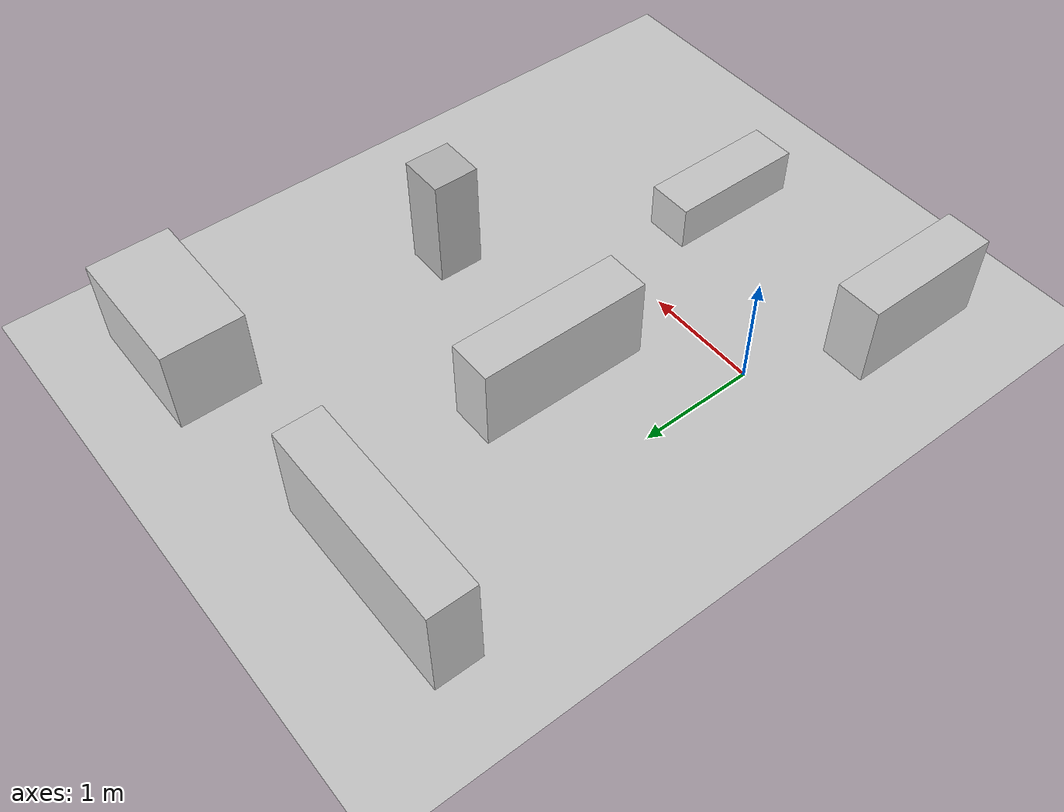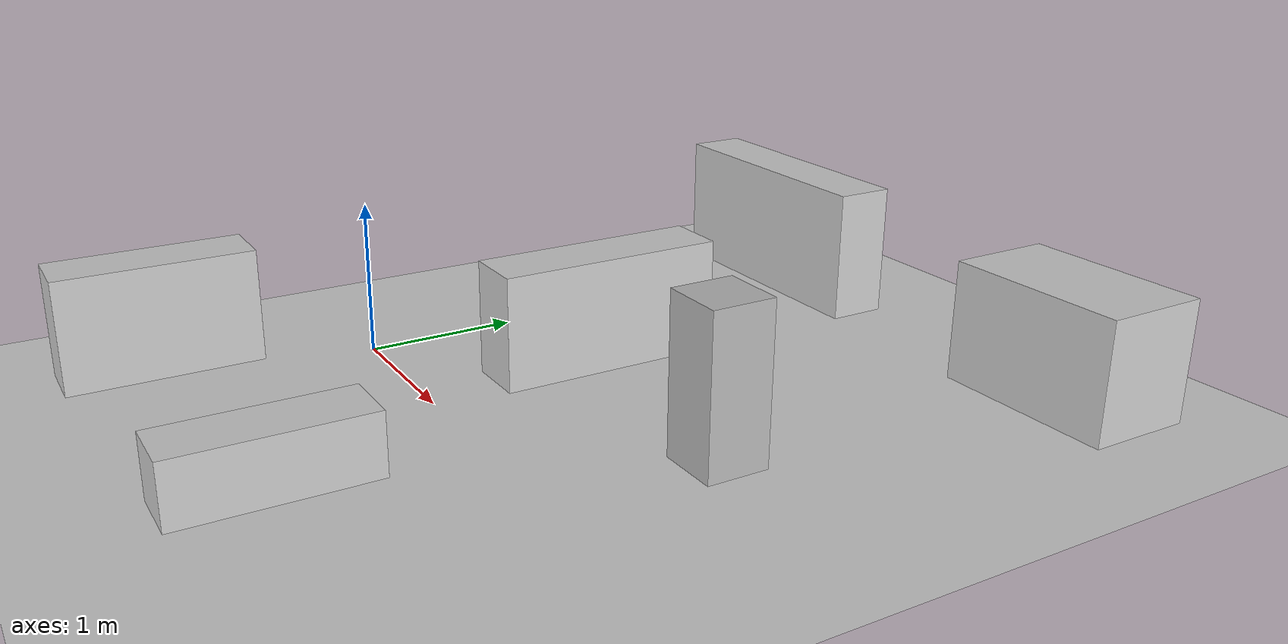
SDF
<sdf version="1.6">
 <world name="ddw">
  <light name="sun" type="directional">
   <direction>0.5 0.1 -0.9</direction>
   <pose>0 0 10 0 0 0</pose>
   <specular>0.2 0.2 0.2 1</specular>
   <diffuse>0.8 0.8 0.8 1</diffuse>
   <attenuation>
    <range>1000</range>
    <quadratic>0.001</quadratic>
    <constant>0.9</constant>
    <linear>0.01</linear>
   </attenuation>
  </light>
  <include><name>floor</name><uri>model://ground_plane</uri></include>
  <include><pose>-0.4 -1.3 0 0 0 0</pose><name>couch</name><uri>model://ddw/couch</uri></include>
  <include><pose>2.5 1.05 0 0 0 0</pose><name>chair</name><uri>model://ddw/chair</uri></include>
  <include><pose>0.9 1.22 0 0 0 0</pose><name>table</name><uri>model://ddw/table</uri></include>
  <include><pose>0.2 3.25 0 0 0 0</pose><name>sidetable</name><uri>model://ddw/sidetable</uri></include>
  <include><pose>1.56 -1.18 0 0 0 0</pose><name>couchtable</name><uri>model://ddw/salon</uri></include>
  <include><pose>2.85 3.35 0 0 0 0</pose><name>desk</name><uri>model://ddw/desk</uri></include>
  <physics type="ode">
   <real_time_update_rate>333.0</real_time_update_rate>
   <max_step_size>0.003</max_step_size>
   <ode><constraints><cfm>0.0001</cfm></constraints><solver><type>quick</type><iters>100</iters></solver></ode>
  </physics>
 </world>
</sdf>

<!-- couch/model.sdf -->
<sdf version="1.6">
  <model name="ddw/couch">
    <link name="1_link">
      <collision name="1_col">
        <geometry>
          <box>
            <size>0.4 1.25 0.75</size>
          </box>
        </geometry>
        <pose>0.0 0.0 0.375 0 0 0</pose>
      </collision>
      <visual name="1_vis">
        <geometry>
          <box>
            <size>0.4 1.25 0.75</size>
          </box>
        </geometry>
        <material>
          <ambient>0.8 0.8 0.8 1</ambient>
        </material>
        <pose>0.0 0.0 0.375 0 0 0</pose>
      </visual>
      <pose>0 0 0 0 0 0</pose>
    </link>
    <link name="in_front_of">
      <virtual_volume name="in_front_of_vv">
        <geometry>
          <box>
            <size>0.9 0.6 0.01</size>
          </box>
        </geometry>
        <pose>0.45 0.0 0.005 0 0 0</pose>
      </virtual_volume>
    </link>
    <link name="on_top_of">
      <virtual_volume name="on_top_of_vv">
        <geometry>
          <box>
            <size>0.4 1.25 0.43</size>
          </box>
        </geometry>
        <pose>0.0 0.0 0.985 0 0 0</pose>
      </virtual_volume>
    </link>
    <static>true</static>
  </model>
</sdf>

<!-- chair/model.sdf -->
<sdf version="1.6">
  <model name="ddw/chair">
    <link name="1_link">
      <collision name="1_col">
        <geometry>
          <box>
            <size>0.4 0.4 1.0</size>
          </box>
        </geometry>
      </collision>
      <visual name="1_vis">
        <geometry>
          <box>
            <size>0.4 0.4 1.0</size>
          </box>
        </geometry>
      </visual>
      <pose>0 0 0.5 0 0 0</pose>
    </link>
    <link name="in_front_of">
      <virtual_volume name="in_front_of_vv">
        <geometry>
          <box>
            <size>0.2 0.2 0.01</size>
          </box>
        </geometry>
        <pose>0.7 0.0 0.005 0 0 0</pose>
      </virtual_volume>
    </link>
    <static>true</static>
  </model>
</sdf>

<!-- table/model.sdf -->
<sdf version="1.6">
  <model name="ddw/table">
    <link name="1_link">
      <collision name="1_col">
        <geometry>
          <box>
            <size>0.4 1.5 0.75</size>
          </box>
        </geometry>
      </collision>
      <visual name="1_vis">
        <geometry>
          <box>
            <size>0.4 1.5 0.75</size>
          </box>
        </geometry>
        <material>
          <ambient>0.8 0.8 0.8 1</ambient>
        </material>
      </visual>
      <pose>0 0 0.375 0 0 0</pose>
    </link>
    <link name="in_front_of">
      <virtual_volume name="in_front_of_vv">
        <geometry>
          <box>
            <size>0.5 1.0 0.01</size>
          </box>
        </geometry>
        <pose>0.5 0.0 0.005 0 0 0</pose>
      </virtual_volume>
    </link>
    <link name="on_top_of">
      <virtual_volume name="on_top_of_vv">
        <geometry>
          <box>
            <size>0.38 1.48 0.3</size>
          </box>
        </geometry>
        <pose>0.0 0.0 0.92 0 0 0</pose>
      </virtual_volume>
    </link>
    <static>true</static>
  </model>
</sdf>

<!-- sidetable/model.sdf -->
<sdf version="1.6">
  <model name="ddw/sidetable">
    <link name="1_link">
      <collision name="1_col">
        <geometry>
          <box>
            <size>1.8 0.4 0.9</size>
          </box>
        </geometry>
      </collision>
      <visual name="1_vis">
        <geometry>
          <box>
            <size>1.8 0.4 0.9</size>
          </box>
        </geometry>
        <material>
          <ambient>0.8 0.8 0.8 1</ambient>
        </material>
      </visual>
      <pose>0.0 0.0 0.45 0 0 0</pose>
    </link>
    <static>true</static>
  </model>
</sdf>

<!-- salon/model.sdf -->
<sdf version="1.6">
  <model name="ddw/salon">
    <link name="1_link">
      <collision name="1_col">
        <geometry>
          <box>
            <size>0.4 1.2 0.4</size>
          </box>
        </geometry>
      </collision>
      <visual name="1_vis">
        <geometry>
          <box>
            <size>0.4 1.2 0.4</size>
          </box>
        </geometry>
        <material>
          <ambient>0.8 0.8 0.8 1</ambient>
        </material>
      </visual>
      <pose>0 0 0.2 0 0 0</pose>
    </link>
    <link name="in_front_of">
      <virtual_volume name="in_front_of_vv">
        <geometry>
          <box>
            <size>0.9 0.6 0.01</size>
          </box>
        </geometry>
        <pose>0.45 0.0 0.005 0 0 0</pose>
      </virtual_volume>
    </link>
    <link name="on_top_of">
      <virtual_volume name="on_top_of_vv">
        <geometry>
          <box>
            <size>0.38 1.18 0.4</size>
          </box>
        </geometry>
        <pose>0.0 0.0 0.62 0 0 0</pose>
      </virtual_volume>
    </link>
    <static>true</static>
  </model>
</sdf>

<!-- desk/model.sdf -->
<sdf version="1.6">
  <model name="ddw/desk">
    <link name="1_link">
      <collision name="1_col">
        <geometry>
          <box>
            <size>1.18 0.7 0.78</size>
          </box>
        </geometry>
      </collision>
      <visual name="1_vis">
        <geometry>
          <box>
            <size>1.18 0.7 0.78</size>
          </box>
        </geometry>
        <material>
          <ambient>0.8 0.8 0.8 1</ambient>
        </material>
      </visual>
      <pose>0.0 0.0 0.39 0 0 0</pose>
    </link>
    <static>true</static>
  </model>
</sdf>
